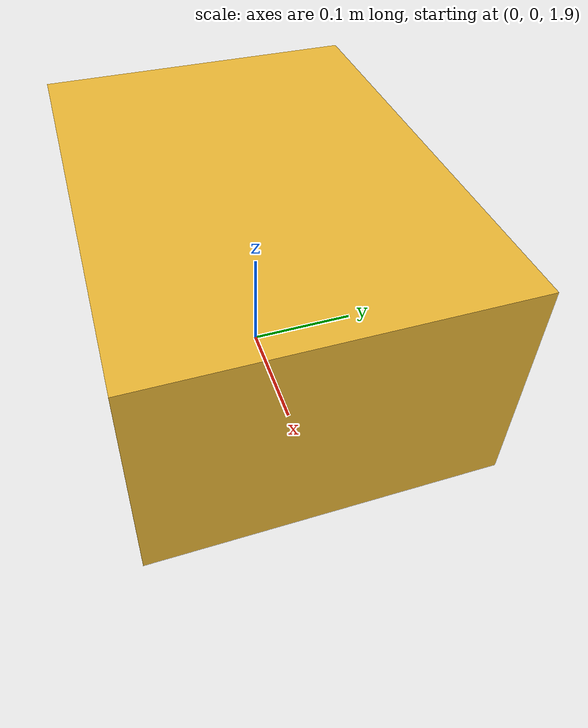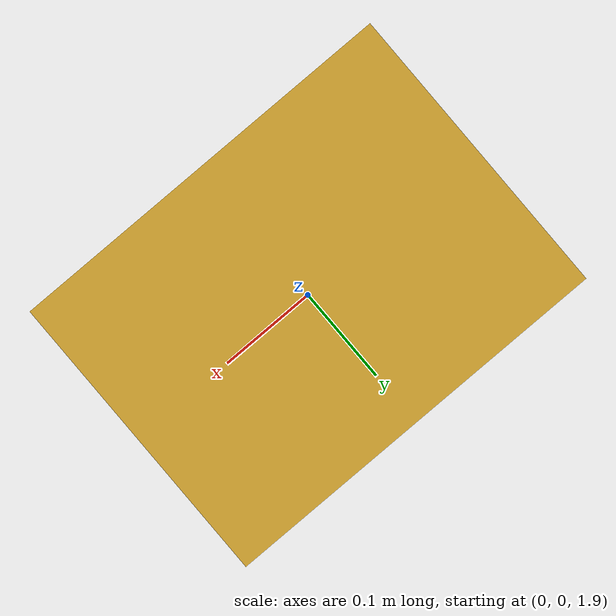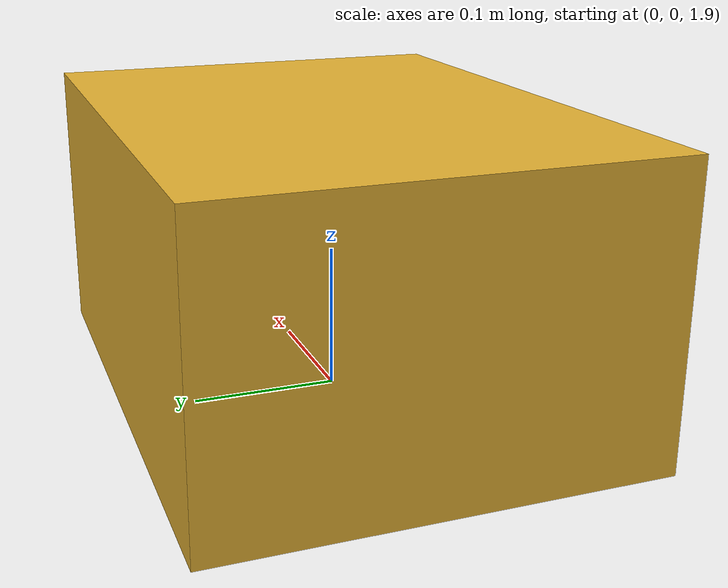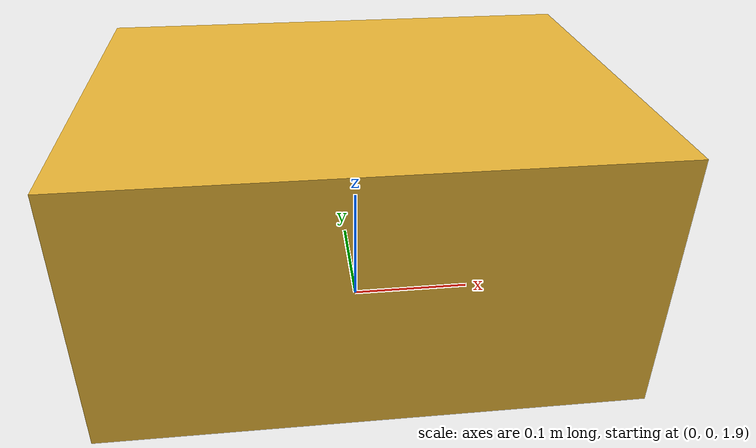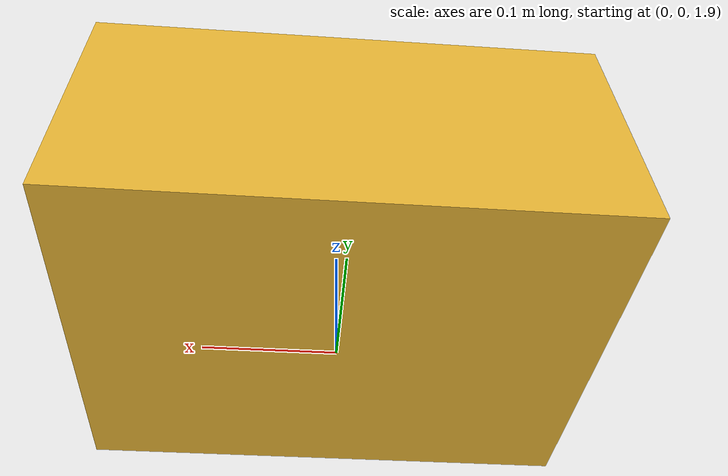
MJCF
<mujoco model="water_drag">
  <!-- density=1000 makes the medium behave like water (buoyancy + drag).
       Try density=1.2 (air) to feel the difference. -->
  <option gravity="0 0 -9.81" timestep="0.002" density="1000" viscosity="0.001"/>

  <worldbody>
    <light pos="0 0 3"/>
    <geom type="plane" size="3 3 0.1" rgba="0.3 0.5 0.7 1"/>

    <body name="blob" pos="0 0 2">
      <freejoint/>
      <!-- density 800 < 1000 -> slightly buoyant; ellipsoid fluid model for tunable drag -->
      <geom type="box" size="0.2 0.15 0.1" density="800"
            fluidshape="ellipsoid" fluidcoef="0.5 0.25 1.5 1.0 1.0"
            rgba="0.9 0.7 0.2 1"/>
    </body>
  </worldbody>
</mujoco>
